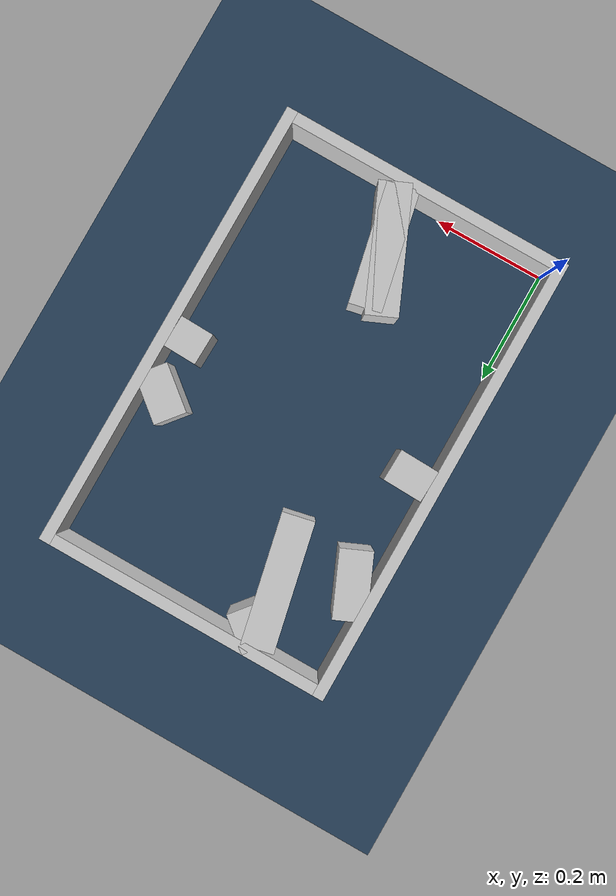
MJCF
<?xml version="1.0" ?>
<mujoco model="generated_real_template">
  <compiler angle="degree"/>
  <option timestep="0.002" integrator="implicitfast" iterations="100" cone="elliptic"/>
  <default>
    <geom density="1"/>
  </default>
  <asset>
    <texture builtin="gradient" height="3072" rgb1="0.3 0.5 0.7" rgb2="0 0 0" type="skybox" width="512"/>
    <texture builtin="checker" height="300" mark="edge" markrgb="0.8 0.8 0.8" name="groundplane" rgb1="0.2 0.3 0.4" rgb2="0.1 0.2 0.3" type="2d" width="300"/>
    <material name="groundplane" reflectance="0.2" texrepeat="5 5" texture="groundplane" texuniform="true"/>
  </asset>
  <worldbody>
    <light dir="0 0 -1" directional="true" pos="0 0 1.5"/>
    <geom name="floor" type="plane" condim="4" friction="0.5 0.005 0.001" material="groundplane" size="0 0 0.05"/>
    <body name="walls">
      <geom name="wall_boundary_left" type="box" condim="4" friction="1.0 0.005 0.0001" rgba="0.8 0.8 0.8 1" pos="-0.010000 0.387500 0.050000" euler="0 0 0.000000" size="0.010000 0.407500 0.050000"/>
      <geom name="wall_boundary_right" type="box" condim="4" friction="1.0 0.005 0.0001" rgba="0.8 0.8 0.8 1" pos="0.500000 0.387500 0.050000" euler="0 0 0.000000" size="0.010000 0.407500 0.050000"/>
      <geom name="wall_boundary_bottom" type="box" condim="4" friction="1.0 0.005 0.0001" rgba="0.8 0.8 0.8 1" pos="0.245000 -0.010000 0.050000" euler="0 0 0.000000" size="0.245000 0.010000 0.050000"/>
      <geom name="wall_boundary_top" type="box" condim="4" friction="1.0 0.005 0.0001" rgba="0.8 0.8 0.8 1" pos="0.245000 0.785000 0.050000" euler="0 0 0.000000" size="0.245000 0.010000 0.050000"/>
      <geom name="wall_inner_1_1" type="box" condim="4" friction="1.0 0.005 0.0001" rgba="0.8 0.8 0.8 1" pos="0.035142 0.407528 0.050000" euler="0 0 -1.731725" size="0.035158 0.028500 0.050000"/>
      <geom name="wall_inner_1_2" type="box" condim="4" friction="1.0 0.005 0.0001" rgba="0.8 0.8 0.8 1" pos="0.460023 0.394683 0.050000" euler="0 0 -1.731725" size="0.029990 0.028500 0.050000"/>
      <geom name="wall_inner_2_1" type="box" condim="4" friction="1.0 0.005 0.0001" rgba="0.8 0.8 0.8 1" pos="0.455842 0.492991 0.050000" euler="0 0 140.764759" size="0.044100 0.028500 0.050000"/>
      <geom name="wall_inner_2_2" type="box" condim="4" friction="1.0 0.005 0.0001" rgba="0.8 0.8 0.8 1" pos="0.139798 0.751073 0.050000" euler="0 0 140.764759" size="0.034546 0.028500 0.050000"/>
      <geom name="wall_inner_3_1" type="box" condim="4" friction="1.0 0.005 0.0001" rgba="0.8 0.8 0.8 1" pos="0.249895 0.102409 0.050000" euler="0 0 113.531323" size="0.111698 0.028500 0.050000"/>
      <geom name="wall_inner_3_2" type="box" condim="4" friction="1.0 0.005 0.0001" rgba="0.8 0.8 0.8 1" pos="0.029488 0.608553 0.050000" euler="0 0 113.531323" size="0.058503 0.028500 0.050000"/>
      <geom name="wall_inner_4_1" type="box" condim="4" friction="1.0 0.005 0.0001" rgba="0.8 0.8 0.8 1" pos="0.137412 0.665111 0.050000" euler="0 0 -77.915821" size="0.112379 0.028500 0.050000"/>
      <geom name="wall_inner_4_2" type="box" condim="4" friction="1.0 0.005 0.0001" rgba="0.8 0.8 0.8 1" pos="0.257698 0.103274 0.050000" euler="0 0 -77.915821" size="0.105614 0.028500 0.050000"/>
    </body>
  </worldbody>
</mujoco>
